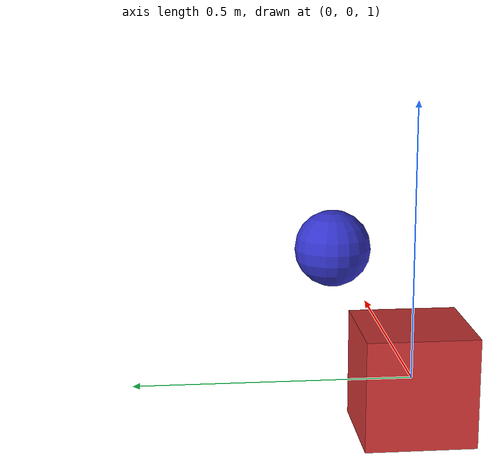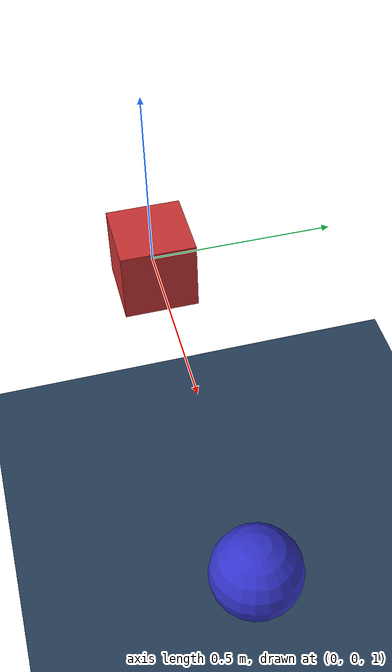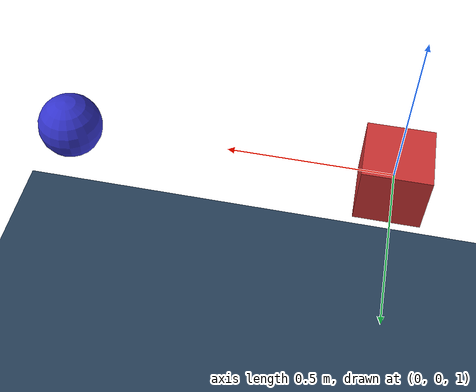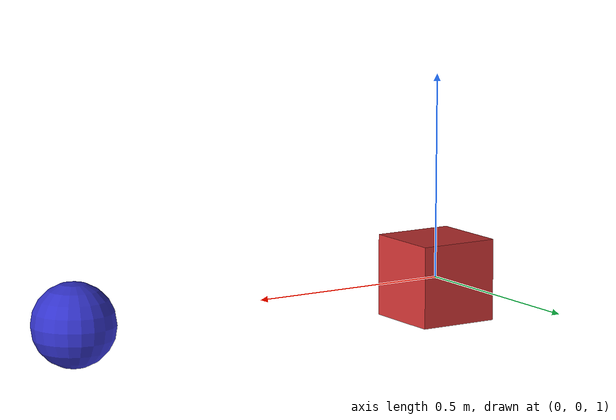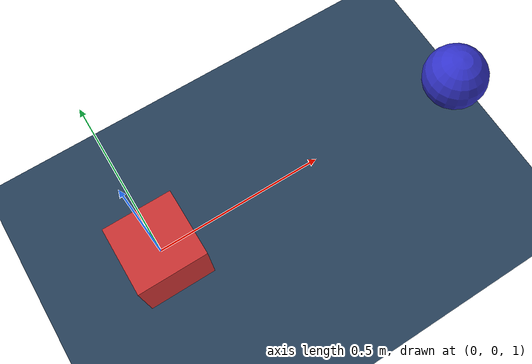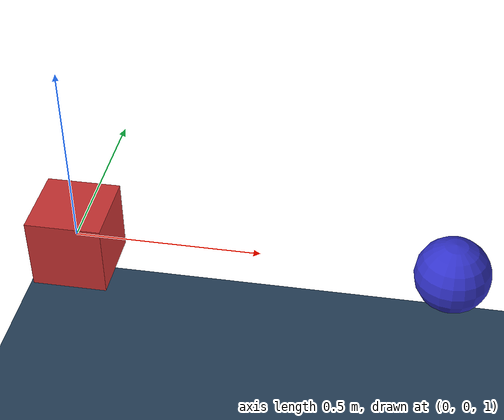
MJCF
<mujoco>
    <worldbody>

        <light pos="0 0 1"/>
        <light pos="0 -0.2 1" dir="0 0.2 -0.8" directional="true"/>

        <!-- Define the environment -->
        <body name="floor" pos="0 0 0">
			<geom name="floor_geom" type="plane" size="0 0 0.1" material="groundplane" friction ="0.00000001 0.001 0.001" priority="1" />
        </body>

        <body name="cube" pos="0 0 1">
	<freejoint/>
            <geom  type="box" size="0.1 0.1 0.1" mass="1." material="CubeMat" />
           <site name="sensor_box" />
        </body>

        <body name="ball" pos="1 0 1">
			<geom name="ball_geom" type="sphere" size="0.1" mass="1." material="BallMat" />
            <site name="sensor_ball" />
            <joint name="joint_x" type="slide" pos="0 0 0" axis="1 0 0"/>
            <joint name="joint_y" type="slide" pos="0 0 0" axis="0 1 0"/>
            <joint name="joint_z" type="slide" pos="0 0 0" axis="0 0 1"/>
        </body>

    </worldbody>

    <actuator>
        <motor name="actuator_x" joint="joint_x" gear="1"/>
        <motor name="actuator_y" joint="joint_y" gear="1"/>
        <motor name="actuator_z" joint="joint_z" gear="1"/>
    </actuator>

    <asset>
        <!-- Materials for visualization -->
        <material name="MatPlane" rgba="0.8 0.9 0.8 1"/>
        <material name="CubeMat" rgba="0.8 0.2 0.2 1"/>
        <material name="BallMat" rgba="0.2 0.2 0.8 1"/>

    <texture type="skybox" builtin="gradient" rgb1="0.3 0.5 0.7" rgb2="0 0 0" width="512" height="3072"/>
    <texture type="2d" name="groundplane" builtin="checker" mark="edge" rgb1="0.2 0.3 0.4" rgb2="0.1 0.2 0.3"
      markrgb="0.8 0.8 0.8" width="300" height="300"/>
    <material name="groundplane" texture="groundplane" texuniform="true" texrepeat="5 5" reflectance="0.2"/>
    </asset>

      <visual>
        <headlight diffuse="0.6 0.6 0.6" ambient="0.3 0.3 0.3" specular="0 0 0"/>
        <rgba haze="0.15 0.25 0.35 1"/>
        <global azimuth="60" elevation="-20"/>
      </visual>

  <sensor>
      <velocimeter name="sensor_box" site="sensor_box"/>
      <velocimeter name="sensor_ball" site="sensor_ball"/>
  </sensor>

</mujoco>
